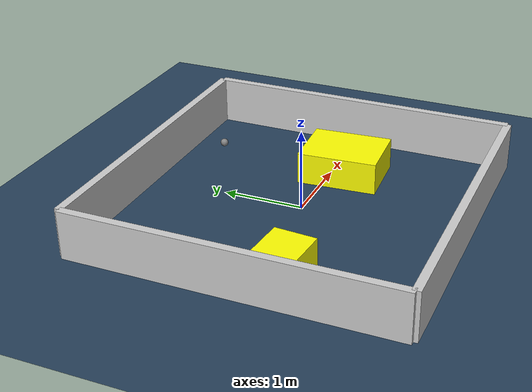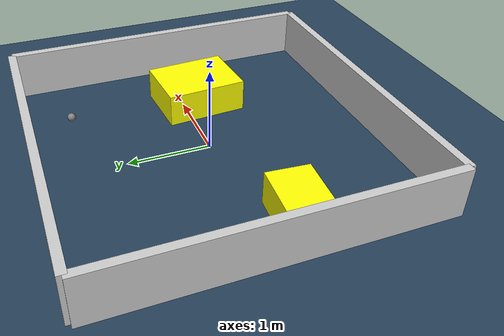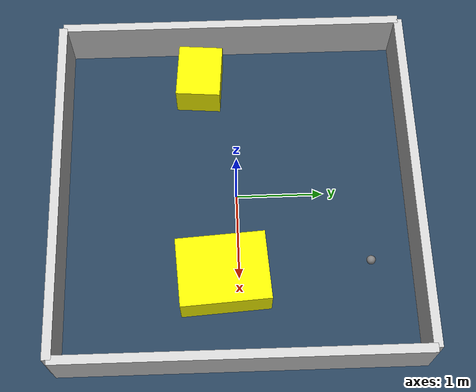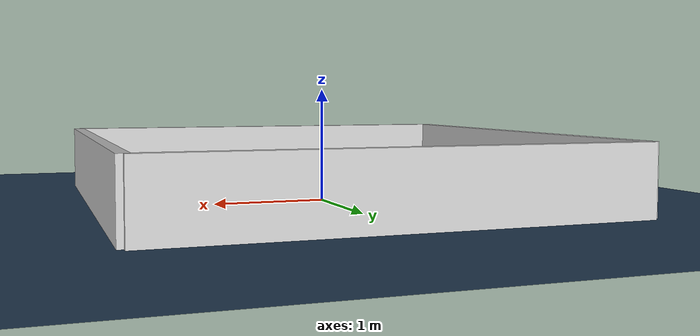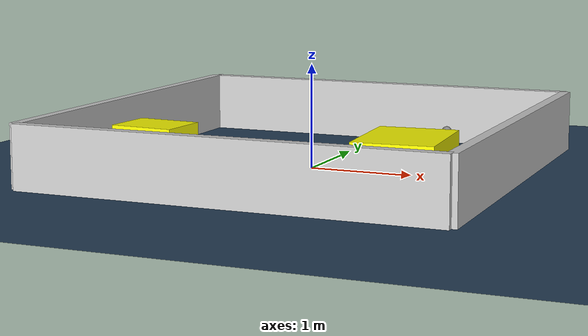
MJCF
<?xml version="1.0" ?>
<mujoco model="generated_environment">
  <option timestep="0.01" integrator="RK4" cone="elliptic"/>
  <default>
    <geom density="1"/>
  </default>
  <asset>
    <texture builtin="gradient" height="3072" rgb1="0.3 0.5 0.7" rgb2="0 0 0" type="skybox" width="512"/>
    <texture builtin="checker" height="300" mark="edge" markrgb="0.8 0.8 0.8" name="groundplane" rgb1="0.2 0.3 0.4" rgb2="0.1 0.2 0.3" type="2d" width="300"/>
    <material name="groundplane" reflectance="0.2" texrepeat="5 5" texture="groundplane" texuniform="true"/>
    <material name="robot" rgba="0.0 1.0 0.0 1"/>
  </asset>
  <worldbody>
    <light dir="0 0 -1" directional="true" pos="0 0 1.5"/>
    <geom condim="4" friction="1.0 0.005 0.001" material="groundplane" name="floor" size="0 0 0.05" type="plane"/>
    <body name="walls">
      <geom name="wall_1" condim="4" pos="-2.0 0.0 0.3" rgba="0.800000011920929 0.800000011920929 0.800000011920929 1.0" size="0.05 2.0 0.3" type="box"/>
      <geom name="wall_2" condim="4" pos="2.0 0.0 0.3" rgba="0.800000011920929 0.800000011920929 0.800000011920929 1.0" size="0.05 2.0 0.3" type="box"/>
      <geom name="wall_3" condim="4" pos="0.0 -2.0 0.3" rgba="0.800000011920929 0.800000011920929 0.800000011920929 1.0" size="2.0 0.05 0.3" type="box"/>
      <geom name="wall_4" condim="4" pos="0.0 2.0 0.3" rgba="0.800000011920929 0.800000011920929 0.800000011920929 1.0" size="2.0 0.05 0.3" type="box"/>
    </body>
    <body name="robot">
      <joint name="joint_x" type="slide" pos="0 0 0" axis="1 0 0"/>
      <joint name="joint_y" type="slide" pos="0 0 0" axis="0 1 0"/>
      <geom name="robot" type="sphere" pos="0.897973704039162 1.464187137642797 0.2" size="0.05" mass="5." friction="1.0 0.005 0.0001" condim="4"/>
      <site name="sensor_ball"/>
    </body>
    <body name="obstacle_1_movable">
      <geom name="obstacle_1_movable" condim="4" pos="1.0064209625406462 -0.17749936478089956 0.2" euler="0 0 273.8174736117409" friction="1.0 0.005 0.001" rgba="1 1 0 1" size="0.4986269726772368 0.38850022453503547 0.2" type="box" mass="0.1"/>
      <joint type="free"/>
    </body>
    <body name="obstacle_2_movable">
      <geom name="obstacle_2_movable" condim="4" pos="-1.484513709529363 -0.39369574016148867 0.2" euler="0 0 355.61139382872193" friction="1.0 0.005 0.001" rgba="1 1 0 1" size="0.32566527076669427 0.25936905432779733 0.2" type="box" mass="0.1"/>
      <joint type="free"/>
    </body>
  </worldbody>
  <actuator>
    <motor name="actuator_x" joint="joint_x" gear="1" ctrlrange="-1 1"/>
    <motor name="actuator_y" joint="joint_y" gear="1" ctrlrange="-1 1"/>
  </actuator>
</mujoco>
